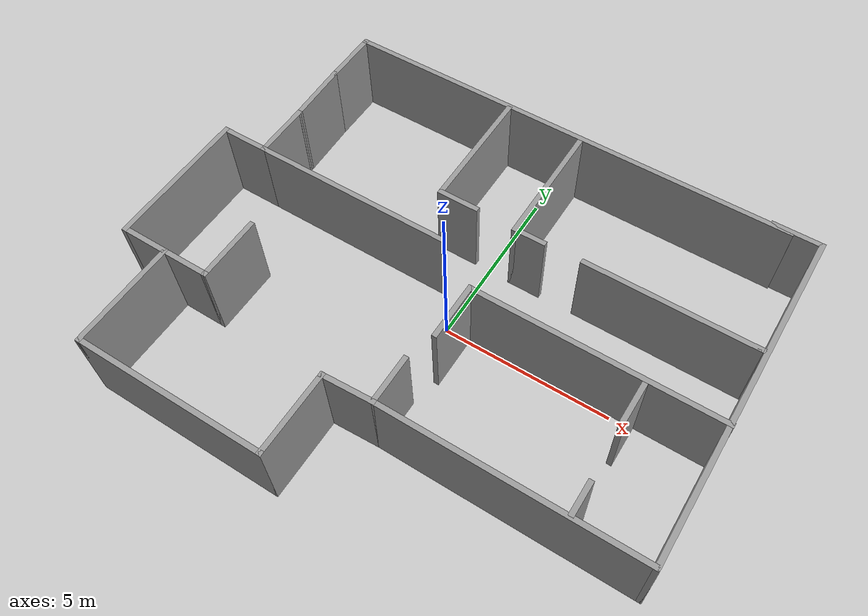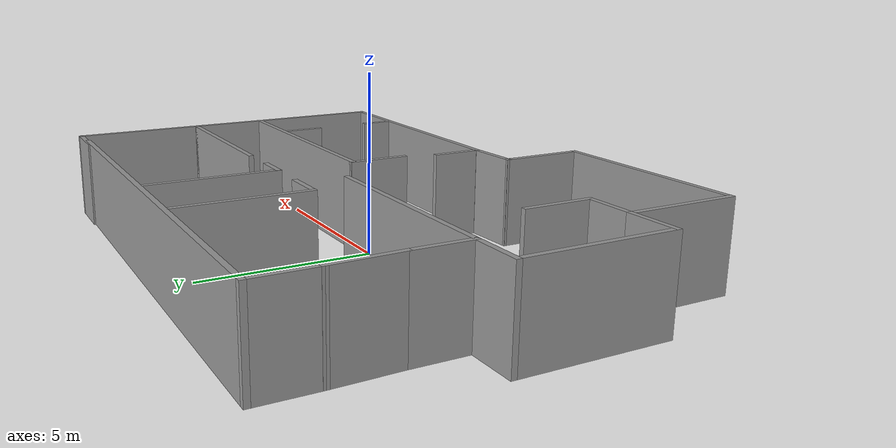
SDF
<?xml version='1.0'?>
<sdf version='1.6'>
  <model name='ufficio'>
    <pose frame=''>-0.1406 -0.018187 0 0 -0 0</pose>
    <link name='Wall_0'>
      <collision name='Wall_0_Collision'>
        <geometry>
          <box>
            <size>13.75 0.15 2.5</size>
          </box>
        </geometry>
        <pose frame=''>0 0 1.25 0 -0 0</pose>
      </collision>
      <visual name='Wall_0_Visual'>
        <pose frame=''>0 0 1.25 0 -0 0</pose>
        <geometry>
          <box>
            <size>13.75 0.15 2.5</size>
          </box>
        </geometry>
        <material>
          <script>
            <uri>file://media/materials/scripts/gazebo.material</uri>
            <name>Gazebo/Grey</name>
          </script>
          <ambient>1 1 1 1</ambient>
        </material>
        <meta>
          <layer>0</layer>
        </meta>
      </visual>
      <pose frame=''>0.222 6.08089 0 0 -0 0</pose>
    </link>
    <link name='Wall_10'>
      <collision name='Wall_10_Collision'>
        <geometry>
          <box>
            <size>2.5 0.15 2.5</size>
          </box>
        </geometry>
        <pose frame=''>0 0 1.25 0 -0 0</pose>
      </collision>
      <visual name='Wall_10_Visual'>
        <pose frame=''>0 0 1.25 0 -0 0</pose>
        <geometry>
          <box>
            <size>2.5 0.15 2.5</size>
          </box>
        </geometry>
        <material>
          <script>
            <uri>file://media/materials/scripts/gazebo.material</uri>
            <name>Gazebo/Grey</name>
          </script>
          <ambient>1 1 1 1</ambient>
        </material>
        <meta>
          <layer>0</layer>
        </meta>
      </visual>
      <pose frame=''>-0.9251 -4.95616 0 0 -0 1.5708</pose>
    </link>
    <link name='Wall_12'>
      <collision name='Wall_12_Collision'>
        <geometry>
          <box>
            <size>7.5 0.15 2.5</size>
          </box>
        </geometry>
        <pose frame=''>0 0 1.25 0 -0 0</pose>
      </collision>
      <visual name='Wall_12_Visual'>
        <pose frame=''>0 0 1.25 0 -0 0</pose>
        <geometry>
          <box>
            <size>7.5 0.15 2.5</size>
          </box>
        </geometry>
        <material>
          <script>
            <uri>file://media/materials/scripts/gazebo.material</uri>
            <name>Gazebo/Grey</name>
          </script>
          <ambient>1 1 1 1</ambient>
        </material>
        <meta>
          <layer>0</layer>
        </meta>
      </visual>
      <pose frame=''>4.1856 -3.71884 0 0 -0 0</pose>
    </link>
    <link name='Wall_13'>
      <collision name='Wall_13_Collision'>
        <geometry>
          <box>
            <size>10 0.15 2.5</size>
          </box>
        </geometry>
        <pose frame=''>0 0 1.25 0 -0 0</pose>
      </collision>
      <visual name='Wall_13_Visual'>
        <pose frame=''>0 0 1.25 0 -0 0</pose>
        <geometry>
          <box>
            <size>10 0.15 2.5</size>
          </box>
        </geometry>
        <material>
          <script>
            <uri>file://media/materials/scripts/gazebo.material</uri>
            <name>Gazebo/Grey</name>
          </script>
          <ambient>1 1 1 1</ambient>
        </material>
        <meta>
          <layer>0</layer>
        </meta>
      </visual>
      <pose frame=''>7.8606 1.20616 0 0 -0 1.5708</pose>
    </link>
    <link name='Wall_14'>
      <collision name='Wall_14_Collision'>
        <geometry>
          <box>
            <size>1.5 0.15 2.5</size>
          </box>
        </geometry>
        <pose frame=''>0 0 1.25 0 -0 0</pose>
      </collision>
      <visual name='Wall_14_Visual'>
        <pose frame=''>0 0 1.25 0 -0 0</pose>
        <geometry>
          <box>
            <size>1.5 0.15 2.5</size>
          </box>
        </geometry>
        <material>
          <script>
            <uri>file://media/materials/scripts/gazebo.material</uri>
            <name>Gazebo/Grey</name>
          </script>
          <ambient>1 1 1 1</ambient>
        </material>
        <meta>
          <layer>0</layer>
        </meta>
      </visual>
      <pose frame=''>7.1856 6.13116 0 0 -0 3.14159</pose>
    </link>
    <link name='Wall_16'>
      <collision name='Wall_16_Collision'>
        <geometry>
          <box>
            <size>6 0.15 2.5</size>
          </box>
        </geometry>
        <pose frame=''>0 0 1.25 0 -0 0</pose>
      </collision>
      <visual name='Wall_16_Visual'>
        <pose frame=''>0 0 1.25 0 -0 0</pose>
        <geometry>
          <box>
            <size>6 0.15 2.5</size>
          </box>
        </geometry>
        <material>
          <script>
            <uri>file://media/materials/scripts/gazebo.material</uri>
            <name>Gazebo/Grey</name>
          </script>
          <ambient>1 1 1 1</ambient>
        </material>
        <meta>
          <layer>0</layer>
        </meta>
      </visual>
      <pose frame=''>-3.6001 1.06884 0 0 -0 0</pose>
    </link>
    <link name='Wall_18'>
      <collision name='Wall_18_Collision'>
        <geometry>
          <box>
            <size>1.5 0.15 2.5</size>
          </box>
        </geometry>
        <pose frame=''>0 0 1.25 0 -0 0</pose>
      </collision>
      <visual name='Wall_18_Visual'>
        <pose frame=''>0 0 1.25 0 -0 0</pose>
        <geometry>
          <box>
            <size>1.5 0.15 2.5</size>
          </box>
        </geometry>
        <material>
          <script>
            <uri>file://media/materials/scripts/gazebo.material</uri>
            <name>Gazebo/Grey</name>
          </script>
          <ambient>1 1 1 1</ambient>
        </material>
        <meta>
          <layer>0</layer>
        </meta>
      </visual>
      <pose frame=''>-5.8501 -3.03116 0 0 -0 0</pose>
    </link>
    <link name='Wall_19'>
      <collision name='Wall_19_Collision'>
        <geometry>
          <box>
            <size>2 0.15 2.5</size>
          </box>
        </geometry>
        <pose frame=''>0 0 1.25 0 -0 0</pose>
      </collision>
      <visual name='Wall_19_Visual'>
        <pose frame=''>0 0 1.25 0 -0 0</pose>
        <geometry>
          <box>
            <size>2 0.15 2.5</size>
          </box>
        </geometry>
        <material>
          <script>
            <uri>file://media/materials/scripts/gazebo.material</uri>
            <name>Gazebo/Grey</name>
          </script>
          <ambient>1 1 1 1</ambient>
        </material>
        <meta>
          <layer>0</layer>
        </meta>
      </visual>
      <pose frame=''>-5.1751 -2.10616 0 0 -0 1.5708</pose>
    </link>
    <link name='Wall_2'>
      <collision name='Wall_2_Collision'>
        <geometry>
          <box>
            <size>1.75 0.15 2.5</size>
          </box>
        </geometry>
        <pose frame=''>0 0 1.25 0 -0 0</pose>
      </collision>
      <visual name='Wall_2_Visual'>
        <pose frame=''>0 0 1.25 0 -0 0</pose>
        <geometry>
          <box>
            <size>1.75 0.15 2.5</size>
          </box>
        </geometry>
        <material>
          <script>
            <uri>file://media/materials/scripts/gazebo.material</uri>
            <name>Gazebo/Grey</name>
          </script>
          <ambient>1 1 1 1</ambient>
        </material>
        <meta>
          <layer>0</layer>
        </meta>
      </visual>
      <pose frame=''>-6.578 5.28089 0 0 -0 -1.5708</pose>
    </link>
    <link name='Wall_21'>
      <collision name='Wall_21_Collision'>
        <geometry>
          <box>
            <size>1.5 0.15 2.5</size>
          </box>
        </geometry>
        <pose frame=''>0 0 1.25 0 -0 0</pose>
      </collision>
      <visual name='Wall_21_Visual'>
        <pose frame=''>0 0 1.25 0 -0 0</pose>
        <geometry>
          <box>
            <size>1.5 0.15 2.5</size>
          </box>
        </geometry>
        <material>
          <script>
            <uri>file://media/materials/scripts/gazebo.material</uri>
            <name>Gazebo/Grey</name>
          </script>
          <ambient>1 1 1 1</ambient>
        </material>
        <meta>
          <layer>0</layer>
        </meta>
      </visual>
      <pose frame=''>0.5106 -3.04384 0 0 -0 1.5708</pose>
    </link>
    <link name='Wall_23'>
      <collision name='Wall_23_Collision'>
        <geometry>
          <box>
            <size>1.75 0.15 2.5</size>
          </box>
        </geometry>
        <pose frame=''>0 0 1.25 0 -0 0</pose>
      </collision>
      <visual name='Wall_23_Visual'>
        <pose frame=''>0 0 1.25 0 -0 0</pose>
        <geometry>
          <box>
            <size>1.75 0.15 2.5</size>
          </box>
        </geometry>
        <material>
          <script>
            <uri>file://media/materials/scripts/gazebo.material</uri>
            <name>Gazebo/Grey</name>
          </script>
          <ambient>1 1 1 1</ambient>
        </material>
        <meta>
          <layer>0</layer>
        </meta>
      </visual>
      <pose frame=''>0.7751 -0.617688 0 0 -0 1.5708</pose>
    </link>
    <link name='Wall_24'>
      <collision name='Wall_24_Collision'>
        <geometry>
          <box>
            <size>7.25 0.15 2.5</size>
          </box>
        </geometry>
        <pose frame=''>0 0 1.25 0 -0 0</pose>
      </collision>
      <visual name='Wall_24_Visual'>
        <pose frame=''>0 0 1.25 0 -0 0</pose>
        <geometry>
          <box>
            <size>7.25 0.15 2.5</size>
          </box>
        </geometry>
        <material>
          <script>
            <uri>file://media/materials/scripts/gazebo.material</uri>
            <name>Gazebo/Grey</name>
          </script>
          <ambient>1 1 1 1</ambient>
        </material>
        <meta>
          <layer>0</layer>
        </meta>
      </visual>
      <pose frame=''>4.3251 0.182312 0 0 -0 0</pose>
    </link>
    <link name='Wall_26'>
      <collision name='Wall_26_Collision'>
        <geometry>
          <box>
            <size>3.75 0.15 2.5</size>
          </box>
        </geometry>
        <pose frame=''>0 0 1.25 0 -0 0</pose>
      </collision>
      <visual name='Wall_26_Visual'>
        <pose frame=''>0 0 1.25 0 -0 0</pose>
        <geometry>
          <box>
            <size>3.75 0.15 2.5</size>
          </box>
        </geometry>
        <material>
          <script>
            <uri>file://media/materials/scripts/gazebo.material</uri>
            <name>Gazebo/Grey</name>
          </script>
          <ambient>1 1 1 1</ambient>
        </material>
        <meta>
          <layer>0</layer>
        </meta>
      </visual>
      <pose frame=''>-1.51283 4.20154 0 0 -0 -1.5708</pose>
    </link>
    <link name='Wall_27'>
      <collision name='Wall_27_Collision'>
        <geometry>
          <box>
            <size>1.25 0.15 2.5</size>
          </box>
        </geometry>
        <pose frame=''>0 0 1.25 0 -0 0</pose>
      </collision>
      <visual name='Wall_27_Visual'>
        <pose frame=''>0 0 1.25 0 -0 0</pose>
        <geometry>
          <box>
            <size>1.25 0.15 2.5</size>
          </box>
        </geometry>
        <material>
          <script>
            <uri>file://media/materials/scripts/gazebo.material</uri>
            <name>Gazebo/Grey</name>
          </script>
          <ambient>1 1 1 1</ambient>
        </material>
        <meta>
          <layer>0</layer>
        </meta>
      </visual>
      <pose frame=''>-0.962825 2.40154 0 0 -0 0</pose>
    </link>
    <link name='Wall_29'>
      <collision name='Wall_29_Collision'>
        <geometry>
          <box>
            <size>3.75 0.15 2.5</size>
          </box>
        </geometry>
        <pose frame=''>0 0 1.25 0 -0 0</pose>
      </collision>
      <visual name='Wall_29_Visual'>
        <pose frame=''>0 0 1.25 0 -0 0</pose>
        <geometry>
          <box>
            <size>3.75 0.15 2.5</size>
          </box>
        </geometry>
        <material>
          <script>
            <uri>file://media/materials/scripts/gazebo.material</uri>
            <name>Gazebo/Grey</name>
          </script>
          <ambient>1 1 1 1</ambient>
        </material>
        <meta>
          <layer>0</layer>
        </meta>
      </visual>
      <pose frame=''>0.814775 4.17509 0 0 -0 -1.5708</pose>
    </link>
    <link name='Wall_30'>
      <collision name='Wall_30_Collision'>
        <geometry>
          <box>
            <size>1 0.15 2.5</size>
          </box>
        </geometry>
        <pose frame=''>0 0 1.25 0 -0 0</pose>
      </collision>
      <visual name='Wall_30_Visual'>
        <pose frame=''>0 0 1.25 0 -0 0</pose>
        <geometry>
          <box>
            <size>1 0.15 2.5</size>
          </box>
        </geometry>
        <material>
          <script>
            <uri>file://media/materials/scripts/gazebo.material</uri>
            <name>Gazebo/Grey</name>
          </script>
          <ambient>1 1 1 1</ambient>
        </material>
        <meta>
          <layer>0</layer>
        </meta>
      </visual>
      <pose frame=''>1.23978 2.37509 0 0 -0 0</pose>
    </link>
    <link name='Wall_32'>
      <collision name='Wall_32_Collision'>
        <geometry>
          <box>
            <size>5 0.15 2.5</size>
          </box>
        </geometry>
        <pose frame=''>0 0 1.25 0 -0 0</pose>
      </collision>
      <visual name='Wall_32_Visual'>
        <pose frame=''>0 0 1.25 0 -0 0</pose>
        <geometry>
          <box>
            <size>5 0.15 2.5</size>
          </box>
        </geometry>
        <material>
          <script>
            <uri>file://media/materials/scripts/gazebo.material</uri>
            <name>Gazebo/Grey</name>
          </script>
          <ambient>1 1 1 1</ambient>
        </material>
        <meta>
          <layer>0</layer>
        </meta>
      </visual>
      <pose frame=''>5.2632 2.40434 0 0 -0 0</pose>
    </link>
    <link name='Wall_33'>
      <collision name='Wall_33_Collision'>
        <geometry>
          <box>
            <size>0.25 0.15 2.5</size>
          </box>
        </geometry>
        <pose frame=''>0 0 1.25 0 -0 0</pose>
      </collision>
      <visual name='Wall_33_Visual'>
        <pose frame=''>0 0 1.25 0 -0 0</pose>
        <geometry>
          <box>
            <size>0.25 0.15 2.5</size>
          </box>
        </geometry>
        <material>
          <script>
            <uri>file://media/materials/scripts/gazebo.material</uri>
            <name>Gazebo/Grey</name>
          </script>
          <ambient>1 1 1 1</ambient>
        </material>
        <meta>
          <layer>0</layer>
        </meta>
      </visual>
      <pose frame=''>7.7382 2.40434 0 0 -0 0</pose>
    </link>
    <link name='Wall_35'>
      <collision name='Wall_35_Collision'>
        <geometry>
          <box>
            <size>1.58705 0.15 2.5</size>
          </box>
        </geometry>
        <pose frame=''>0 0 1.25 0 -0 0</pose>
      </collision>
      <visual name='Wall_35_Visual'>
        <pose frame=''>0 0 1.25 0 -0 0</pose>
        <geometry>
          <box>
            <size>1.58705 0.15 2.5</size>
          </box>
        </geometry>
        <material>
          <script>
            <uri>file://media/materials/scripts/gazebo.material</uri>
            <name>Gazebo/Grey</name>
          </script>
          <ambient>1 1 1 1</ambient>
        </material>
        <meta>
          <layer>0</layer>
        </meta>
      </visual>
      <pose frame=''>-0.20725 -3.75 0 0 -0 0.043384</pose>
    </link>
    <link name='Wall_37'>
      <collision name='Wall_37_Collision'>
        <geometry>
          <box>
            <size>1.96282 0.15 2.5</size>
          </box>
        </geometry>
        <pose frame=''>0 0 1.25 0 -0 0</pose>
      </collision>
      <visual name='Wall_37_Visual'>
        <pose frame=''>0 0 1.25 0 -0 0</pose>
        <geometry>
          <box>
            <size>1.96282 0.15 2.5</size>
          </box>
        </geometry>
        <material>
          <script>
            <uri>file://media/materials/scripts/gazebo.material</uri>
            <name>Gazebo/Grey</name>
          </script>
          <ambient>1 1 1 1</ambient>
        </material>
        <meta>
          <layer>0</layer>
        </meta>
      </visual>
      <pose frame=''>-6.55155 3.57486 0 0 -0 -1.54161</pose>
    </link>
    <link name='Wall_39'>
      <collision name='Wall_39_Collision'>
        <geometry>
          <box>
            <size>1.25 0.15 2.5</size>
          </box>
        </geometry>
        <pose frame=''>0 0 1.25 0 -0 0</pose>
      </collision>
      <visual name='Wall_39_Visual'>
        <pose frame=''>0 0 1.25 0 -0 0</pose>
        <geometry>
          <box>
            <size>1.25 0.15 2.5</size>
          </box>
        </geometry>
        <material>
          <script>
            <uri>file://media/materials/scripts/gazebo.material</uri>
            <name>Gazebo/Grey</name>
          </script>
          <ambient>1 1 1 1</ambient>
        </material>
        <meta>
          <layer>0</layer>
        </meta>
      </visual>
      <pose frame=''>5.70803 -0.486488 0 0 -0 -1.5708</pose>
    </link>
    <link name='Wall_4'>
      <collision name='Wall_4_Collision'>
        <geometry>
          <box>
            <size>1.75 0.15 2.5</size>
          </box>
        </geometry>
        <pose frame=''>0 0 1.25 0 -0 0</pose>
      </collision>
      <visual name='Wall_4_Visual'>
        <pose frame=''>0 0 1.25 0 -0 0</pose>
        <geometry>
          <box>
            <size>1.75 0.15 2.5</size>
          </box>
        </geometry>
        <material>
          <script>
            <uri>file://media/materials/scripts/gazebo.material</uri>
            <name>Gazebo/Grey</name>
          </script>
          <ambient>1 1 1 1</ambient>
        </material>
        <meta>
          <layer>0</layer>
        </meta>
      </visual>
      <pose frame=''>-6.5251 1.86884 0 0 -0 -1.5708</pose>
    </link>
    <link name='Wall_41'>
      <collision name='Wall_41_Collision'>
        <geometry>
          <box>
            <size>1 0.15 2.5</size>
          </box>
        </geometry>
        <pose frame=''>0 0 1.25 0 -0 0</pose>
      </collision>
      <visual name='Wall_41_Visual'>
        <pose frame=''>0 0 1.25 0 -0 0</pose>
        <geometry>
          <box>
            <size>1 0.15 2.5</size>
          </box>
        </geometry>
        <material>
          <script>
            <uri>file://media/materials/scripts/gazebo.material</uri>
            <name>Gazebo/Grey</name>
          </script>
          <ambient>1 1 1 1</ambient>
        </material>
        <meta>
          <layer>0</layer>
        </meta>
      </visual>
      <pose frame=''>5.76093 -3.21449 0 0 -0 1.5708</pose>
    </link>
    <link name='Wall_5'>
      <collision name='Wall_5_Collision'>
        <geometry>
          <box>
            <size>1.5 0.15 2.5</size>
          </box>
        </geometry>
        <pose frame=''>0 0 1.25 0 -0 0</pose>
      </collision>
      <visual name='Wall_5_Visual'>
        <pose frame=''>0 0 1.25 0 -0 0</pose>
        <geometry>
          <box>
            <size>1.5 0.15 2.5</size>
          </box>
        </geometry>
        <material>
          <script>
            <uri>file://media/materials/scripts/gazebo.material</uri>
            <name>Gazebo/Grey</name>
          </script>
          <ambient>1 1 1 1</ambient>
        </material>
        <meta>
          <layer>0</layer>
        </meta>
      </visual>
      <pose frame=''>-7.2001 1.06884 0 0 -0 3.14159</pose>
    </link>
    <link name='Wall_6'>
      <collision name='Wall_6_Collision'>
        <geometry>
          <box>
            <size>4.25 0.15 2.5</size>
          </box>
        </geometry>
        <pose frame=''>0 0 1.25 0 -0 0</pose>
      </collision>
      <visual name='Wall_6_Visual'>
        <pose frame=''>0 0 1.25 0 -0 0</pose>
        <geometry>
          <box>
            <size>4.25 0.15 2.5</size>
          </box>
        </geometry>
        <material>
          <script>
            <uri>file://media/materials/scripts/gazebo.material</uri>
            <name>Gazebo/Grey</name>
          </script>
          <ambient>1 1 1 1</ambient>
        </material>
        <meta>
          <layer>0</layer>
        </meta>
      </visual>
      <pose frame=''>-7.8751 -0.981163 0 0 -0 -1.5708</pose>
    </link>
    <link name='Wall_7'>
      <collision name='Wall_7_Collision'>
        <geometry>
          <box>
            <size>1.5 0.15 2.5</size>
          </box>
        </geometry>
        <pose frame=''>0 0 1.25 0 -0 0</pose>
      </collision>
      <visual name='Wall_7_Visual'>
        <pose frame=''>0 0 1.25 0 -0 0</pose>
        <geometry>
          <box>
            <size>1.5 0.15 2.5</size>
          </box>
        </geometry>
        <material>
          <script>
            <uri>file://media/materials/scripts/gazebo.material</uri>
            <name>Gazebo/Grey</name>
          </script>
          <ambient>1 1 1 1</ambient>
        </material>
        <meta>
          <layer>0</layer>
        </meta>
      </visual>
      <pose frame=''>-7.2001 -3.03116 0 0 -0 0</pose>
    </link>
    <link name='Wall_8'>
      <collision name='Wall_8_Collision'>
        <geometry>
          <box>
            <size>3.25 0.15 2.5</size>
          </box>
        </geometry>
        <pose frame=''>0 0 1.25 0 -0 0</pose>
      </collision>
      <visual name='Wall_8_Visual'>
        <pose frame=''>0 0 1.25 0 -0 0</pose>
        <geometry>
          <box>
            <size>3.25 0.15 2.5</size>
          </box>
        </geometry>
        <material>
          <script>
            <uri>file://media/materials/scripts/gazebo.material</uri>
            <name>Gazebo/Grey</name>
          </script>
          <ambient>1 1 1 1</ambient>
        </material>
        <meta>
          <layer>0</layer>
        </meta>
      </visual>
      <pose frame=''>-6.5251 -4.58116 0 0 -0 -1.5708</pose>
    </link>
    <link name='Wall_9'>
      <collision name='Wall_9_Collision'>
        <geometry>
          <box>
            <size>5.75 0.15 2.5</size>
          </box>
        </geometry>
        <pose frame=''>0 0 1.25 0 -0 0</pose>
      </collision>
      <visual name='Wall_9_Visual'>
        <pose frame=''>0 0 1.25 0 -0 0</pose>
        <geometry>
          <box>
            <size>5.75 0.15 2.5</size>
          </box>
        </geometry>
        <material>
          <script>
            <uri>file://media/materials/scripts/gazebo.material</uri>
            <name>Gazebo/Grey</name>
          </script>
          <ambient>1 1 1 1</ambient>
        </material>
        <meta>
          <layer>0</layer>
        </meta>
      </visual>
      <pose frame=''>-3.7251 -6.13116 0 0 -0 0</pose>
    </link>
    <static>1</static>
  </model>
</sdf>
